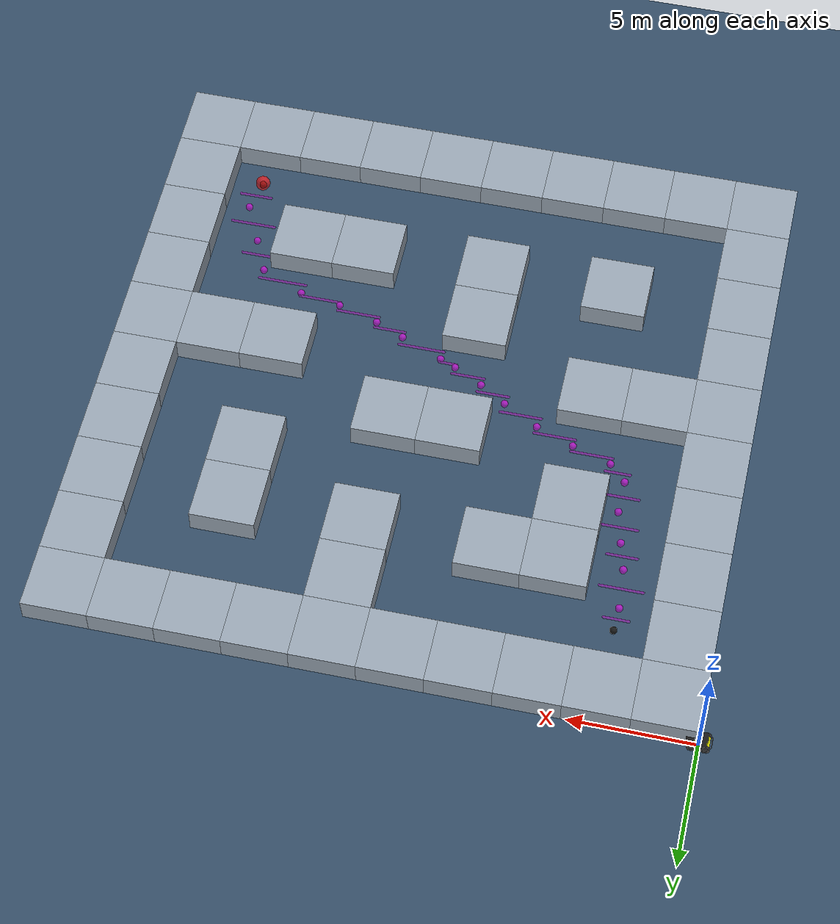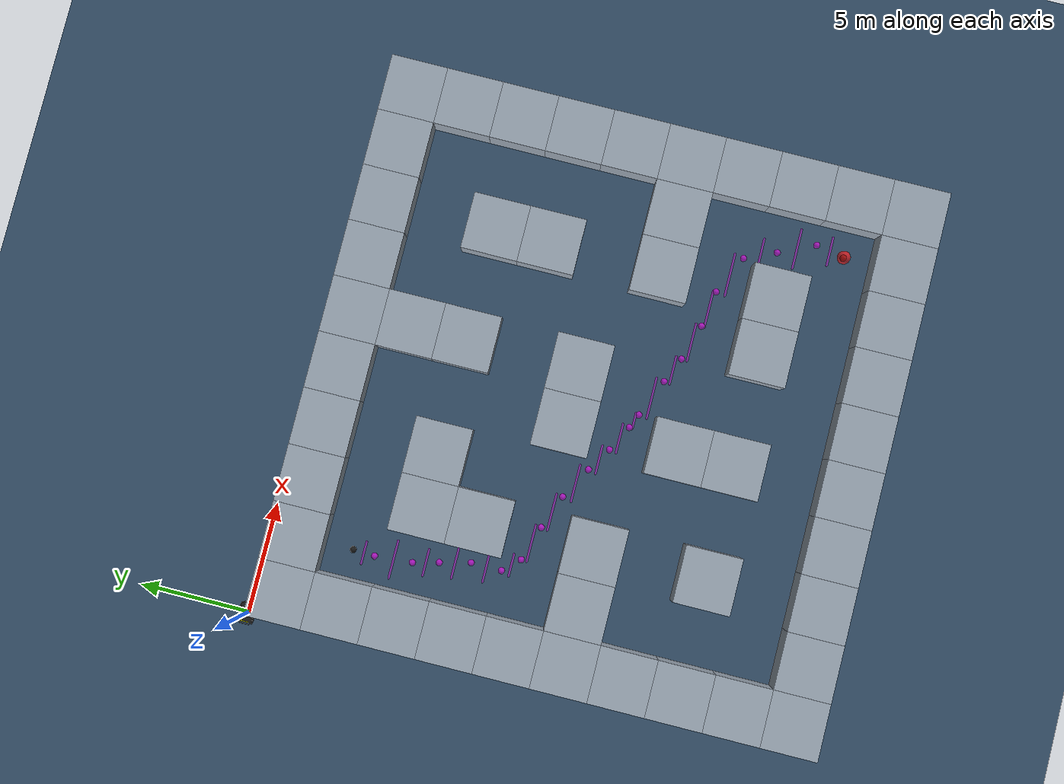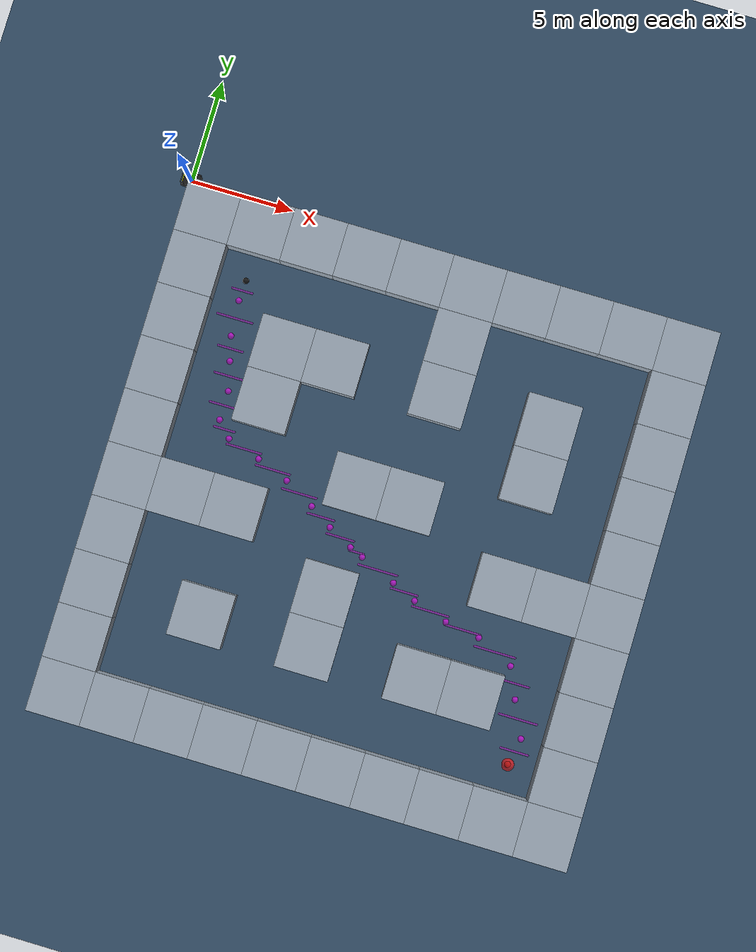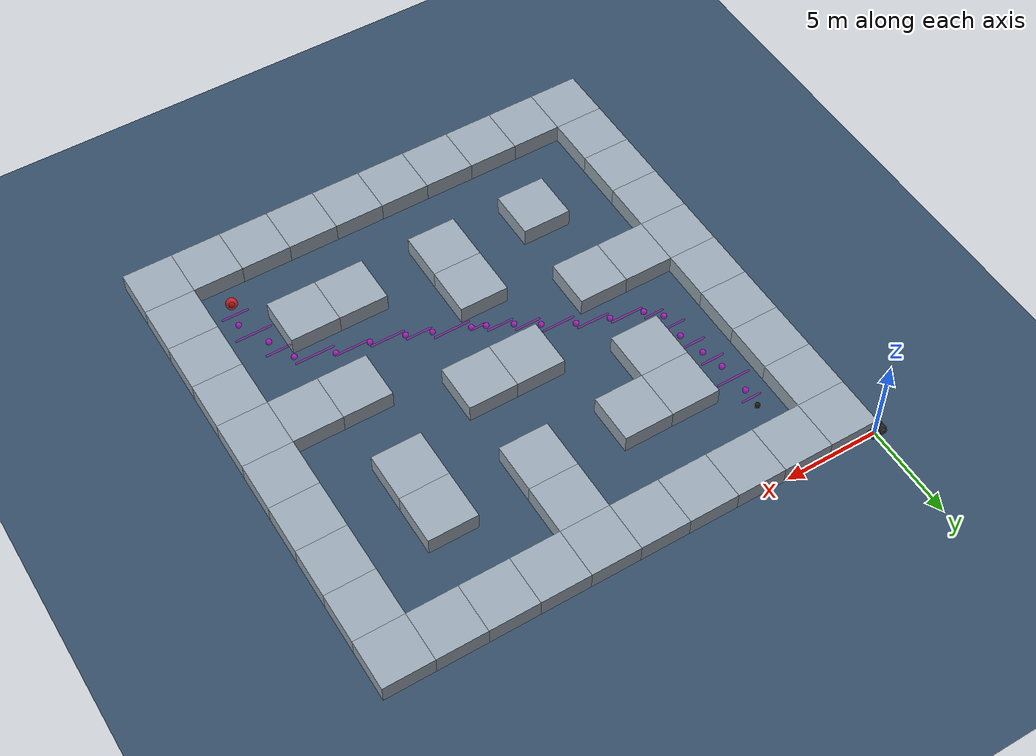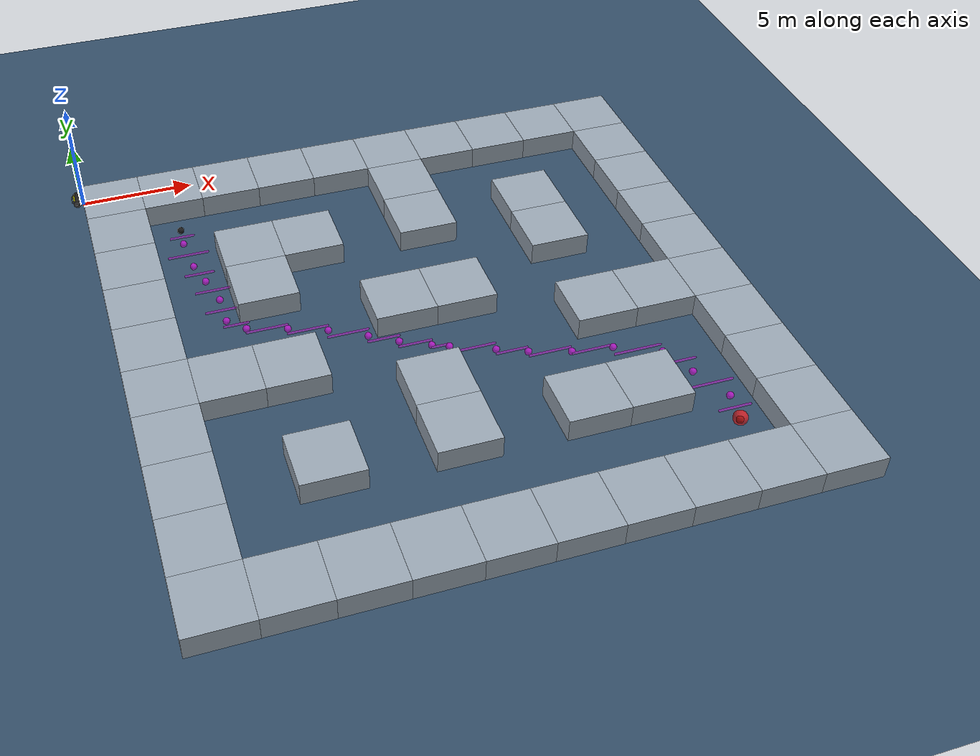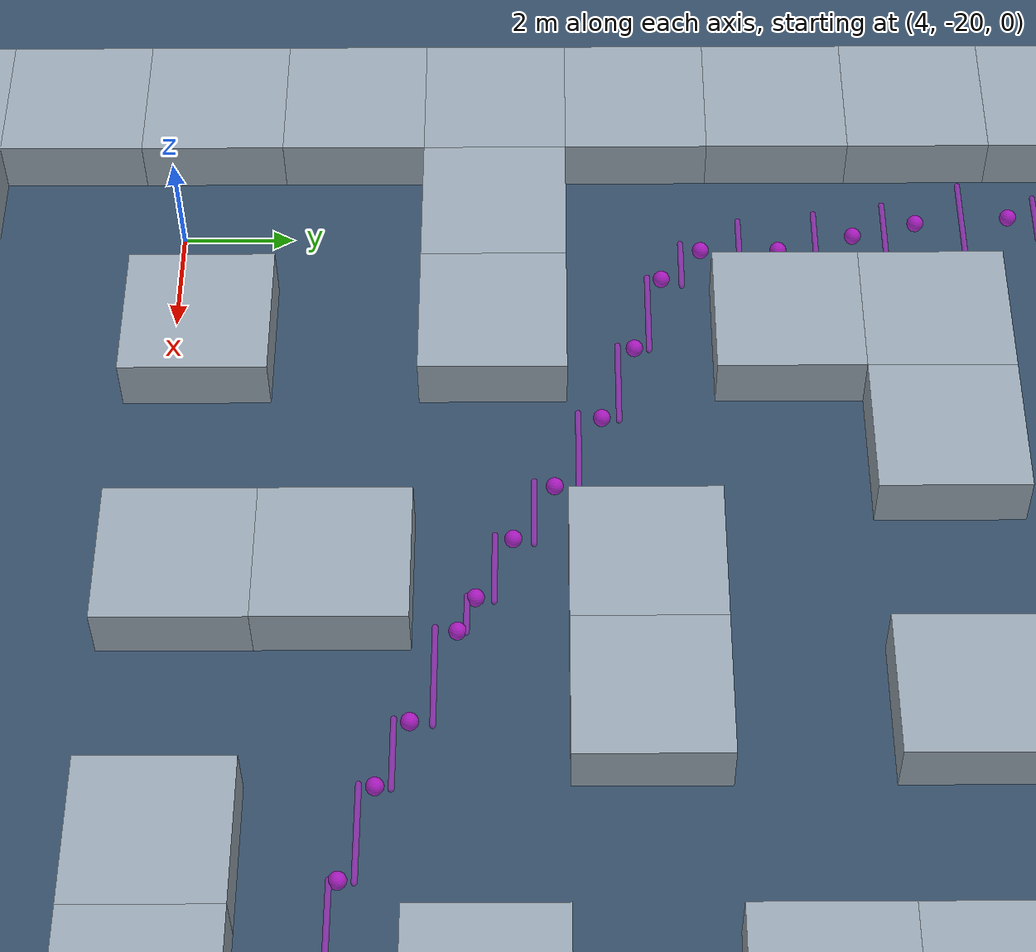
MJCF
<mujoco model="husky maze">
  <include file="./husky_w_lidar.xml"/>
  <include file="../object/floor_sky.xml"/>
  <worldbody>
    <geom name="wall_0" type="box" pos="1.300 -1.300 0.500" size="1.300 1.300 0.500" rgba="0.6 0.65 0.7 1" contype="1" conaffinity="1"/>
    <geom name="wall_1" type="box" pos="3.900 -1.300 0.500" size="1.300 1.300 0.500" rgba="0.6 0.65 0.7 1" contype="1" conaffinity="1"/>
    <geom name="wall_2" type="box" pos="6.500 -1.300 0.500" size="1.300 1.300 0.500" rgba="0.6 0.65 0.7 1" contype="1" conaffinity="1"/>
    <geom name="wall_3" type="box" pos="9.100 -1.300 0.500" size="1.300 1.300 0.500" rgba="0.6 0.65 0.7 1" contype="1" conaffinity="1"/>
    <geom name="wall_4" type="box" pos="11.700 -1.300 0.500" size="1.300 1.300 0.500" rgba="0.6 0.65 0.7 1" contype="1" conaffinity="1"/>
    <geom name="wall_5" type="box" pos="14.300 -1.300 0.500" size="1.300 1.300 0.500" rgba="0.6 0.65 0.7 1" contype="1" conaffinity="1"/>
    <geom name="wall_6" type="box" pos="16.900 -1.300 0.500" size="1.300 1.300 0.500" rgba="0.6 0.65 0.7 1" contype="1" conaffinity="1"/>
    <geom name="wall_7" type="box" pos="19.500 -1.300 0.500" size="1.300 1.300 0.500" rgba="0.6 0.65 0.7 1" contype="1" conaffinity="1"/>
    <geom name="wall_8" type="box" pos="22.100 -1.300 0.500" size="1.300 1.300 0.500" rgba="0.6 0.65 0.7 1" contype="1" conaffinity="1"/>
    <geom name="wall_9" type="box" pos="24.700 -1.300 0.500" size="1.300 1.300 0.500" rgba="0.6 0.65 0.7 1" contype="1" conaffinity="1"/>
    <geom name="wall_10" type="box" pos="1.300 -3.900 0.500" size="1.300 1.300 0.500" rgba="0.6 0.65 0.7 1" contype="1" conaffinity="1"/>
    <geom name="wall_11" type="box" pos="14.300 -3.900 0.500" size="1.300 1.300 0.500" rgba="0.6 0.65 0.7 1" contype="1" conaffinity="1"/>
    <geom name="wall_12" type="box" pos="24.700 -3.900 0.500" size="1.300 1.300 0.500" rgba="0.6 0.65 0.7 1" contype="1" conaffinity="1"/>
    <geom name="wall_13" type="box" pos="1.300 -6.500 0.500" size="1.300 1.300 0.500" rgba="0.6 0.65 0.7 1" contype="1" conaffinity="1"/>
    <geom name="wall_14" type="box" pos="6.500 -6.500 0.500" size="1.300 1.300 0.500" rgba="0.6 0.65 0.7 1" contype="1" conaffinity="1"/>
    <geom name="wall_15" type="box" pos="9.100 -6.500 0.500" size="1.300 1.300 0.500" rgba="0.6 0.65 0.7 1" contype="1" conaffinity="1"/>
    <geom name="wall_16" type="box" pos="14.300 -6.500 0.500" size="1.300 1.300 0.500" rgba="0.6 0.65 0.7 1" contype="1" conaffinity="1"/>
    <geom name="wall_17" type="box" pos="19.500 -6.500 0.500" size="1.300 1.300 0.500" rgba="0.6 0.65 0.7 1" contype="1" conaffinity="1"/>
    <geom name="wall_18" type="box" pos="24.700 -6.500 0.500" size="1.300 1.300 0.500" rgba="0.6 0.65 0.7 1" contype="1" conaffinity="1"/>
    <geom name="wall_19" type="box" pos="1.300 -9.100 0.500" size="1.300 1.300 0.500" rgba="0.6 0.65 0.7 1" contype="1" conaffinity="1"/>
    <geom name="wall_20" type="box" pos="6.500 -9.100 0.500" size="1.300 1.300 0.500" rgba="0.6 0.65 0.7 1" contype="1" conaffinity="1"/>
    <geom name="wall_21" type="box" pos="19.500 -9.100 0.500" size="1.300 1.300 0.500" rgba="0.6 0.65 0.7 1" contype="1" conaffinity="1"/>
    <geom name="wall_22" type="box" pos="24.700 -9.100 0.500" size="1.300 1.300 0.500" rgba="0.6 0.65 0.7 1" contype="1" conaffinity="1"/>
    <geom name="wall_23" type="box" pos="1.300 -11.700 0.500" size="1.300 1.300 0.500" rgba="0.6 0.65 0.7 1" contype="1" conaffinity="1"/>
    <geom name="wall_24" type="box" pos="11.700 -11.700 0.500" size="1.300 1.300 0.500" rgba="0.6 0.65 0.7 1" contype="1" conaffinity="1"/>
    <geom name="wall_25" type="box" pos="14.300 -11.700 0.500" size="1.300 1.300 0.500" rgba="0.6 0.65 0.7 1" contype="1" conaffinity="1"/>
    <geom name="wall_26" type="box" pos="24.700 -11.700 0.500" size="1.300 1.300 0.500" rgba="0.6 0.65 0.7 1" contype="1" conaffinity="1"/>
    <geom name="wall_27" type="box" pos="1.300 -14.300 0.500" size="1.300 1.300 0.500" rgba="0.6 0.65 0.7 1" contype="1" conaffinity="1"/>
    <geom name="wall_28" type="box" pos="3.900 -14.300 0.500" size="1.300 1.300 0.500" rgba="0.6 0.65 0.7 1" contype="1" conaffinity="1"/>
    <geom name="wall_29" type="box" pos="6.500 -14.300 0.500" size="1.300 1.300 0.500" rgba="0.6 0.65 0.7 1" contype="1" conaffinity="1"/>
    <geom name="wall_30" type="box" pos="19.500 -14.300 0.500" size="1.300 1.300 0.500" rgba="0.6 0.65 0.7 1" contype="1" conaffinity="1"/>
    <geom name="wall_31" type="box" pos="22.100 -14.300 0.500" size="1.300 1.300 0.500" rgba="0.6 0.65 0.7 1" contype="1" conaffinity="1"/>
    <geom name="wall_32" type="box" pos="24.700 -14.300 0.500" size="1.300 1.300 0.500" rgba="0.6 0.65 0.7 1" contype="1" conaffinity="1"/>
    <geom name="wall_33" type="box" pos="1.300 -16.900 0.500" size="1.300 1.300 0.500" rgba="0.6 0.65 0.7 1" contype="1" conaffinity="1"/>
    <geom name="wall_34" type="box" pos="11.700 -16.900 0.500" size="1.300 1.300 0.500" rgba="0.6 0.65 0.7 1" contype="1" conaffinity="1"/>
    <geom name="wall_35" type="box" pos="24.700 -16.900 0.500" size="1.300 1.300 0.500" rgba="0.6 0.65 0.7 1" contype="1" conaffinity="1"/>
    <geom name="wall_36" type="box" pos="1.300 -19.500 0.500" size="1.300 1.300 0.500" rgba="0.6 0.65 0.7 1" contype="1" conaffinity="1"/>
    <geom name="wall_37" type="box" pos="6.500 -19.500 0.500" size="1.300 1.300 0.500" rgba="0.6 0.65 0.7 1" contype="1" conaffinity="1"/>
    <geom name="wall_38" type="box" pos="11.700 -19.500 0.500" size="1.300 1.300 0.500" rgba="0.6 0.65 0.7 1" contype="1" conaffinity="1"/>
    <geom name="wall_39" type="box" pos="16.900 -19.500 0.500" size="1.300 1.300 0.500" rgba="0.6 0.65 0.7 1" contype="1" conaffinity="1"/>
    <geom name="wall_40" type="box" pos="19.500 -19.500 0.500" size="1.300 1.300 0.500" rgba="0.6 0.65 0.7 1" contype="1" conaffinity="1"/>
    <geom name="wall_41" type="box" pos="24.700 -19.500 0.500" size="1.300 1.300 0.500" rgba="0.6 0.65 0.7 1" contype="1" conaffinity="1"/>
    <geom name="wall_42" type="box" pos="1.300 -22.100 0.500" size="1.300 1.300 0.500" rgba="0.6 0.65 0.7 1" contype="1" conaffinity="1"/>
    <geom name="wall_43" type="box" pos="24.700 -22.100 0.500" size="1.300 1.300 0.500" rgba="0.6 0.65 0.7 1" contype="1" conaffinity="1"/>
    <geom name="wall_44" type="box" pos="1.300 -24.700 0.500" size="1.300 1.300 0.500" rgba="0.6 0.65 0.7 1" contype="1" conaffinity="1"/>
    <geom name="wall_45" type="box" pos="3.900 -24.700 0.500" size="1.300 1.300 0.500" rgba="0.6 0.65 0.7 1" contype="1" conaffinity="1"/>
    <geom name="wall_46" type="box" pos="6.500 -24.700 0.500" size="1.300 1.300 0.500" rgba="0.6 0.65 0.7 1" contype="1" conaffinity="1"/>
    <geom name="wall_47" type="box" pos="9.100 -24.700 0.500" size="1.300 1.300 0.500" rgba="0.6 0.65 0.7 1" contype="1" conaffinity="1"/>
    <geom name="wall_48" type="box" pos="11.700 -24.700 0.500" size="1.300 1.300 0.500" rgba="0.6 0.65 0.7 1" contype="1" conaffinity="1"/>
    <geom name="wall_49" type="box" pos="14.300 -24.700 0.500" size="1.300 1.300 0.500" rgba="0.6 0.65 0.7 1" contype="1" conaffinity="1"/>
    <geom name="wall_50" type="box" pos="16.900 -24.700 0.500" size="1.300 1.300 0.500" rgba="0.6 0.65 0.7 1" contype="1" conaffinity="1"/>
    <geom name="wall_51" type="box" pos="19.500 -24.700 0.500" size="1.300 1.300 0.500" rgba="0.6 0.65 0.7 1" contype="1" conaffinity="1"/>
    <geom name="wall_52" type="box" pos="22.100 -24.700 0.500" size="1.300 1.300 0.500" rgba="0.6 0.65 0.7 1" contype="1" conaffinity="1"/>
    <geom name="wall_53" type="box" pos="24.700 -24.700 0.500" size="1.300 1.300 0.500" rgba="0.6 0.65 0.7 1" contype="1" conaffinity="1"/>
    <geom name="goal_marker" type="sphere" pos="22.100 -22.100 0.5" size="0.3" rgba="1 0.1 0.1 0.7" contype="0" conaffinity="0"/>
    <geom name="wp_0" type="sphere" pos="3.900 -3.900 0.4" size="0.15" rgba="0.1 0.1 0.1 0.9" contype="0" conaffinity="0"/>
    <geom name="wp_1" type="sphere" pos="3.854 -4.899 0.4" size="0.15" rgba="1 0 1 0.6" contype="0" conaffinity="0"/>
    <geom name="wp_2" type="sphere" pos="3.987 -6.609 0.4" size="0.15" rgba="1 0 1 0.6" contype="0" conaffinity="0"/>
    <geom name="wp_3" type="sphere" pos="4.287 -7.773 0.4" size="0.15" rgba="1 0 1 0.6" contype="0" conaffinity="0"/>
    <geom name="wp_4" type="sphere" pos="4.627 -9.152 0.4" size="0.15" rgba="1 0 1 0.6" contype="0" conaffinity="0"/>
    <geom name="wp_5" type="sphere" pos="4.624 -10.558 0.4" size="0.15" rgba="1 0 1 0.6" contype="0" conaffinity="0"/>
    <geom name="wp_6" type="sphere" pos="5.309 -11.287 0.4" size="0.15" rgba="1 0 1 0.6" contype="0" conaffinity="0"/>
    <geom name="wp_7" type="sphere" pos="6.918 -11.806 0.4" size="0.15" rgba="1 0 1 0.6" contype="0" conaffinity="0"/>
    <geom name="wp_8" type="sphere" pos="8.479 -12.404 0.4" size="0.15" rgba="1 0 1 0.6" contype="0" conaffinity="0"/>
    <geom name="wp_9" type="sphere" pos="9.948 -13.226 0.4" size="0.15" rgba="1 0 1 0.6" contype="0" conaffinity="0"/>
    <geom name="wp_10" type="sphere" pos="11.047 -13.926 0.4" size="0.15" rgba="1 0 1 0.6" contype="0" conaffinity="0"/>
    <geom name="wp_11" type="sphere" pos="12.239 -14.544 0.4" size="0.15" rgba="1 0 1 0.6" contype="0" conaffinity="0"/>
    <geom name="wp_12" type="sphere" pos="12.897 -14.831 0.4" size="0.15" rgba="1 0 1 0.6" contype="0" conaffinity="0"/>
    <geom name="wp_13" type="sphere" pos="14.631 -15.569 0.4" size="0.15" rgba="1 0 1 0.6" contype="0" conaffinity="0"/>
    <geom name="wp_14" type="sphere" pos="15.822 -16.085 0.4" size="0.15" rgba="1 0 1 0.6" contype="0" conaffinity="0"/>
    <geom name="wp_15" type="sphere" pos="17.492 -16.603 0.4" size="0.15" rgba="1 0 1 0.6" contype="0" conaffinity="0"/>
    <geom name="wp_16" type="sphere" pos="19.177 -16.878 0.4" size="0.15" rgba="1 0 1 0.6" contype="0" conaffinity="0"/>
    <geom name="wp_17" type="sphere" pos="20.970 -17.717 0.4" size="0.15" rgba="1 0 1 0.6" contype="0" conaffinity="0"/>
    <geom name="wp_18" type="sphere" pos="21.600 -19.142 0.4" size="0.15" rgba="1 0 1 0.6" contype="0" conaffinity="0"/>
    <geom name="wp_19" type="sphere" pos="22.368 -20.803 0.4" size="0.15" rgba="1 0 1 0.6" contype="0" conaffinity="0"/>
    <geom name="wp_20" type="sphere" pos="22.100 -22.100 0.4" size="0.15" rgba="0.1 0.1 0.1 0.9" contype="0" conaffinity="0"/>
    <geom name="pathseg_0" type="capsule" pos="3.877 -4.399 0.4" size="0.05 0.500" euler="0 1.5708 -1.6167" rgba="1 0 1 0.4" contype="0" conaffinity="0"/>
    <geom name="pathseg_1" type="capsule" pos="3.920 -5.754 0.4" size="0.05 0.858" euler="0 1.5708 -1.4934" rgba="1 0 1 0.4" contype="0" conaffinity="0"/>
    <geom name="pathseg_2" type="capsule" pos="4.137 -7.191 0.4" size="0.05 0.601" euler="0 1.5708 -1.3186" rgba="1 0 1 0.4" contype="0" conaffinity="0"/>
    <geom name="pathseg_3" type="capsule" pos="4.457 -8.463 0.4" size="0.05 0.710" euler="0 1.5708 -1.3291" rgba="1 0 1 0.4" contype="0" conaffinity="0"/>
    <geom name="pathseg_4" type="capsule" pos="4.625 -9.855 0.4" size="0.05 0.703" euler="0 1.5708 -1.5728" rgba="1 0 1 0.4" contype="0" conaffinity="0"/>
    <geom name="pathseg_5" type="capsule" pos="4.966 -10.922 0.4" size="0.05 0.500" euler="0 1.5708 -0.8160" rgba="1 0 1 0.4" contype="0" conaffinity="0"/>
    <geom name="pathseg_6" type="capsule" pos="6.114 -11.546 0.4" size="0.05 0.845" euler="0 1.5708 -0.3119" rgba="1 0 1 0.4" contype="0" conaffinity="0"/>
    <geom name="pathseg_7" type="capsule" pos="7.698 -12.105 0.4" size="0.05 0.836" euler="0 1.5708 -0.3663" rgba="1 0 1 0.4" contype="0" conaffinity="0"/>
    <geom name="pathseg_8" type="capsule" pos="9.214 -12.815 0.4" size="0.05 0.842" euler="0 1.5708 -0.5097" rgba="1 0 1 0.4" contype="0" conaffinity="0"/>
    <geom name="pathseg_9" type="capsule" pos="10.498 -13.576 0.4" size="0.05 0.651" euler="0 1.5708 -0.5674" rgba="1 0 1 0.4" contype="0" conaffinity="0"/>
    <geom name="pathseg_10" type="capsule" pos="11.643 -14.235 0.4" size="0.05 0.672" euler="0 1.5708 -0.4781" rgba="1 0 1 0.4" contype="0" conaffinity="0"/>
    <geom name="pathseg_11" type="capsule" pos="12.568 -14.687 0.4" size="0.05 0.359" euler="0 1.5708 -0.4122" rgba="1 0 1 0.4" contype="0" conaffinity="0"/>
    <geom name="pathseg_12" type="capsule" pos="13.764 -15.200 0.4" size="0.05 0.942" euler="0 1.5708 -0.4024" rgba="1 0 1 0.4" contype="0" conaffinity="0"/>
    <geom name="pathseg_13" type="capsule" pos="15.226 -15.827 0.4" size="0.05 0.649" euler="0 1.5708 -0.4084" rgba="1 0 1 0.4" contype="0" conaffinity="0"/>
    <geom name="pathseg_14" type="capsule" pos="16.657 -16.344 0.4" size="0.05 0.874" euler="0 1.5708 -0.3010" rgba="1 0 1 0.4" contype="0" conaffinity="0"/>
    <geom name="pathseg_15" type="capsule" pos="18.335 -16.740 0.4" size="0.05 0.854" euler="0 1.5708 -0.1616" rgba="1 0 1 0.4" contype="0" conaffinity="0"/>
    <geom name="pathseg_16" type="capsule" pos="20.074 -17.298 0.4" size="0.05 0.990" euler="0 1.5708 -0.4381" rgba="1 0 1 0.4" contype="0" conaffinity="0"/>
    <geom name="pathseg_17" type="capsule" pos="21.285 -18.430 0.4" size="0.05 0.779" euler="0 1.5708 -1.1544" rgba="1 0 1 0.4" contype="0" conaffinity="0"/>
    <geom name="pathseg_18" type="capsule" pos="21.984 -19.972 0.4" size="0.05 0.915" euler="0 1.5708 -1.1378" rgba="1 0 1 0.4" contype="0" conaffinity="0"/>
    <geom name="pathseg_19" type="capsule" pos="22.234 -21.451 0.4" size="0.05 0.662" euler="0 1.5708 -1.7744" rgba="1 0 1 0.4" contype="0" conaffinity="0"/>
  </worldbody>
</mujoco>

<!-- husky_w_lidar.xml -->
<mujoco model="husky_robot_lidar">
  <compiler angle="radian" meshdir="./meshes/" autolimits="true"/>
  <default>
    <joint limited="false" armature="0.01" />
    <equality solref="0.0002 1" solimp="0.99 0.99 0.0001" />
  </default>
  <asset>
    <mesh name="base_link" file="base_link.stl"/>
    <mesh name="wheel" file="wheel.stl"/>
    <mesh name="top_plate" file="top_plate.stl"/>
    <mesh name="user_rail" file="user_rail.stl"/>
    <mesh name="bumper" file="bumper.stl"/>
    <mesh name="large_top_plate" file="large_top_plate.obj"/>
  </asset>
  <worldbody>
    <body name="base_husky" pos="0 0 0.1" euler="0 0 0">
      <inertial pos="0 0 0" quat="0.5 0.5 -0.5 0.5" mass="100" diaginertia="0.04411 0.02467 0.02467"/>
      <joint type="free" name="base_husky_joint" />
      <geom pos="0 0 0.14493" type="mesh" contype="0" conaffinity="1" group="1" density="0" rgba="0.1 0.1 0.1 1" mesh="base_link"/>
      <geom pos="0 0 0.14493" type="mesh" contype="0" conaffinity="1" group="1" density="0" rgba="0.8 0.8 0 1" mesh="top_plate"/>
      <geom pos="0.272 0 0.38993" type="mesh" contype="0" conaffinity="1" group="1" density="0" rgba="0.3 0.3 0.3 1" mesh="user_rail"/>
      <geom pos="0.48 0 0.23593" type="mesh" contype="0" conaffinity="1" group="1" density="0" rgba="0.3 0.3 0.3 1" mesh="bumper"/>
      <geom pos="-0.48 0 0.23593" quat="1.32679e-06 0 0 1" type="mesh" contype="0" conaffinity="1" group="1" density="0" rgba="0.3 0.3 0.3 1" mesh="bumper"/>
      <geom pos="0.08 0 0.38993" type="mesh" contype="0" conaffinity="1" group="1" density="0" rgba="0.1 0.1 0.1 1" mesh="large_top_plate"/>
      <!-- 2D LiDAR: 72 rangefinder rays at 5-degree intervals -->
      <site name="lidar_000" pos="0 0 0.55" zaxis="1.000000 0.000000 0" size="0.001" rgba="0 0 0 0" group="4"/>
      <site name="lidar_001" pos="0 0 0.55" zaxis="0.996195 0.087156 0" size="0.001" rgba="0 0 0 0" group="4"/>
      <site name="lidar_002" pos="0 0 0.55" zaxis="0.984808 0.173648 0" size="0.001" rgba="0 0 0 0" group="4"/>
      <site name="lidar_003" pos="0 0 0.55" zaxis="0.965926 0.258819 0" size="0.001" rgba="0 0 0 0" group="4"/>
      <site name="lidar_004" pos="0 0 0.55" zaxis="0.939693 0.342020 0" size="0.001" rgba="0 0 0 0" group="4"/>
      <site name="lidar_005" pos="0 0 0.55" zaxis="0.906308 0.422618 0" size="0.001" rgba="0 0 0 0" group="4"/>
      <site name="lidar_006" pos="0 0 0.55" zaxis="0.866025 0.500000 0" size="0.001" rgba="0 0 0 0" group="4"/>
      <site name="lidar_007" pos="0 0 0.55" zaxis="0.819152 0.573576 0" size="0.001" rgba="0 0 0 0" group="4"/>
      <site name="lidar_008" pos="0 0 0.55" zaxis="0.766044 0.642788 0" size="0.001" rgba="0 0 0 0" group="4"/>
      <site name="lidar_009" pos="0 0 0.55" zaxis="0.707107 0.707107 0" size="0.001" rgba="0 0 0 0" group="4"/>
      <site name="lidar_010" pos="0 0 0.55" zaxis="0.642788 0.766044 0" size="0.001" rgba="0 0 0 0" group="4"/>
      <site name="lidar_011" pos="0 0 0.55" zaxis="0.573576 0.819152 0" size="0.001" rgba="0 0 0 0" group="4"/>
      <site name="lidar_012" pos="0 0 0.55" zaxis="0.500000 0.866025 0" size="0.001" rgba="0 0 0 0" group="4"/>
      <site name="lidar_013" pos="0 0 0.55" zaxis="0.422618 0.906308 0" size="0.001" rgba="0 0 0 0" group="4"/>
      <site name="lidar_014" pos="0 0 0.55" zaxis="0.342020 0.939693 0" size="0.001" rgba="0 0 0 0" group="4"/>
      <site name="lidar_015" pos="0 0 0.55" zaxis="0.258819 0.965926 0" size="0.001" rgba="0 0 0 0" group="4"/>
      <site name="lidar_016" pos="0 0 0.55" zaxis="0.173648 0.984808 0" size="0.001" rgba="0 0 0 0" group="4"/>
      <site name="lidar_017" pos="0 0 0.55" zaxis="0.087156 0.996195 0" size="0.001" rgba="0 0 0 0" group="4"/>
      <site name="lidar_018" pos="0 0 0.55" zaxis="0.000000 1.000000 0" size="0.001" rgba="0 0 0 0" group="4"/>
      <site name="lidar_019" pos="0 0 0.55" zaxis="-0.087156 0.996195 0" size="0.001" rgba="0 0 0 0" group="4"/>
      <site name="lidar_020" pos="0 0 0.55" zaxis="-0.173648 0.984808 0" size="0.001" rgba="0 0 0 0" group="4"/>
      <site name="lidar_021" pos="0 0 0.55" zaxis="-0.258819 0.965926 0" size="0.001" rgba="0 0 0 0" group="4"/>
      <site name="lidar_022" pos="0 0 0.55" zaxis="-0.342020 0.939693 0" size="0.001" rgba="0 0 0 0" group="4"/>
      <site name="lidar_023" pos="0 0 0.55" zaxis="-0.422618 0.906308 0" size="0.001" rgba="0 0 0 0" group="4"/>
      <site name="lidar_024" pos="0 0 0.55" zaxis="-0.500000 0.866025 0" size="0.001" rgba="0 0 0 0" group="4"/>
      <site name="lidar_025" pos="0 0 0.55" zaxis="-0.573576 0.819152 0" size="0.001" rgba="0 0 0 0" group="4"/>
      <site name="lidar_026" pos="0 0 0.55" zaxis="-0.642788 0.766044 0" size="0.001" rgba="0 0 0 0" group="4"/>
      <site name="lidar_027" pos="0 0 0.55" zaxis="-0.707107 0.707107 0" size="0.001" rgba="0 0 0 0" group="4"/>
      <site name="lidar_028" pos="0 0 0.55" zaxis="-0.766044 0.642788 0" size="0.001" rgba="0 0 0 0" group="4"/>
      <site name="lidar_029" pos="0 0 0.55" zaxis="-0.819152 0.573576 0" size="0.001" rgba="0 0 0 0" group="4"/>
      <site name="lidar_030" pos="0 0 0.55" zaxis="-0.866025 0.500000 0" size="0.001" rgba="0 0 0 0" group="4"/>
      <site name="lidar_031" pos="0 0 0.55" zaxis="-0.906308 0.422618 0" size="0.001" rgba="0 0 0 0" group="4"/>
      <site name="lidar_032" pos="0 0 0.55" zaxis="-0.939693 0.342020 0" size="0.001" rgba="0 0 0 0" group="4"/>
      <site name="lidar_033" pos="0 0 0.55" zaxis="-0.965926 0.258819 0" size="0.001" rgba="0 0 0 0" group="4"/>
      <site name="lidar_034" pos="0 0 0.55" zaxis="-0.984808 0.173648 0" size="0.001" rgba="0 0 0 0" group="4"/>
      <site name="lidar_035" pos="0 0 0.55" zaxis="-0.996195 0.087156 0" size="0.001" rgba="0 0 0 0" group="4"/>
      <site name="lidar_036" pos="0 0 0.55" zaxis="-1.000000 0.000000 0" size="0.001" rgba="0 0 0 0" group="4"/>
      <site name="lidar_037" pos="0 0 0.55" zaxis="-0.996195 -0.087156 0" size="0.001" rgba="0 0 0 0" group="4"/>
      <site name="lidar_038" pos="0 0 0.55" zaxis="-0.984808 -0.173648 0" size="0.001" rgba="0 0 0 0" group="4"/>
      <site name="lidar_039" pos="0 0 0.55" zaxis="-0.965926 -0.258819 0" size="0.001" rgba="0 0 0 0" group="4"/>
      <site name="lidar_040" pos="0 0 0.55" zaxis="-0.939693 -0.342020 0" size="0.001" rgba="0 0 0 0" group="4"/>
      <site name="lidar_041" pos="0 0 0.55" zaxis="-0.906308 -0.422618 0" size="0.001" rgba="0 0 0 0" group="4"/>
      <site name="lidar_042" pos="0 0 0.55" zaxis="-0.866025 -0.500000 0" size="0.001" rgba="0 0 0 0" group="4"/>
      <site name="lidar_043" pos="0 0 0.55" zaxis="-0.819152 -0.573576 0" size="0.001" rgba="0 0 0 0" group="4"/>
      <site name="lidar_044" pos="0 0 0.55" zaxis="-0.766044 -0.642788 0" size="0.001" rgba="0 0 0 0" group="4"/>
      <site name="lidar_045" pos="0 0 0.55" zaxis="-0.707107 -0.707107 0" size="0.001" rgba="0 0 0 0" group="4"/>
      <site name="lidar_046" pos="0 0 0.55" zaxis="-0.642788 -0.766044 0" size="0.001" rgba="0 0 0 0" group="4"/>
      <site name="lidar_047" pos="0 0 0.55" zaxis="-0.573576 -0.819152 0" size="0.001" rgba="0 0 0 0" group="4"/>
      <site name="lidar_048" pos="0 0 0.55" zaxis="-0.500000 -0.866025 0" size="0.001" rgba="0 0 0 0" group="4"/>
      <site name="lidar_049" pos="0 0 0.55" zaxis="-0.422618 -0.906308 0" size="0.001" rgba="0 0 0 0" group="4"/>
      <site name="lidar_050" pos="0 0 0.55" zaxis="-0.342020 -0.939693 0" size="0.001" rgba="0 0 0 0" group="4"/>
      <site name="lidar_051" pos="0 0 0.55" zaxis="-0.258819 -0.965926 0" size="0.001" rgba="0 0 0 0" group="4"/>
      <site name="lidar_052" pos="0 0 0.55" zaxis="-0.173648 -0.984808 0" size="0.001" rgba="0 0 0 0" group="4"/>
      <site name="lidar_053" pos="0 0 0.55" zaxis="-0.087156 -0.996195 0" size="0.001" rgba="0 0 0 0" group="4"/>
      <site name="lidar_054" pos="0 0 0.55" zaxis="-0.000000 -1.000000 0" size="0.001" rgba="0 0 0 0" group="4"/>
      <site name="lidar_055" pos="0 0 0.55" zaxis="0.087156 -0.996195 0" size="0.001" rgba="0 0 0 0" group="4"/>
      <site name="lidar_056" pos="0 0 0.55" zaxis="0.173648 -0.984808 0" size="0.001" rgba="0 0 0 0" group="4"/>
      <site name="lidar_057" pos="0 0 0.55" zaxis="0.258819 -0.965926 0" size="0.001" rgba="0 0 0 0" group="4"/>
      <site name="lidar_058" pos="0 0 0.55" zaxis="0.342020 -0.939693 0" size="0.001" rgba="0 0 0 0" group="4"/>
      <site name="lidar_059" pos="0 0 0.55" zaxis="0.422618 -0.906308 0" size="0.001" rgba="0 0 0 0" group="4"/>
      <site name="lidar_060" pos="0 0 0.55" zaxis="0.500000 -0.866025 0" size="0.001" rgba="0 0 0 0" group="4"/>
      <site name="lidar_061" pos="0 0 0.55" zaxis="0.573576 -0.819152 0" size="0.001" rgba="0 0 0 0" group="4"/>
      <site name="lidar_062" pos="0 0 0.55" zaxis="0.642788 -0.766044 0" size="0.001" rgba="0 0 0 0" group="4"/>
      <site name="lidar_063" pos="0 0 0.55" zaxis="0.707107 -0.707107 0" size="0.001" rgba="0 0 0 0" group="4"/>
      <site name="lidar_064" pos="0 0 0.55" zaxis="0.766044 -0.642788 0" size="0.001" rgba="0 0 0 0" group="4"/>
      <site name="lidar_065" pos="0 0 0.55" zaxis="0.819152 -0.573576 0" size="0.001" rgba="0 0 0 0" group="4"/>
      <site name="lidar_066" pos="0 0 0.55" zaxis="0.866025 -0.500000 0" size="0.001" rgba="0 0 0 0" group="4"/>
      <site name="lidar_067" pos="0 0 0.55" zaxis="0.906308 -0.422618 0" size="0.001" rgba="0 0 0 0" group="4"/>
      <site name="lidar_068" pos="0 0 0.55" zaxis="0.939693 -0.342020 0" size="0.001" rgba="0 0 0 0" group="4"/>
      <site name="lidar_069" pos="0 0 0.55" zaxis="0.965926 -0.258819 0" size="0.001" rgba="0 0 0 0" group="4"/>
      <site name="lidar_070" pos="0 0 0.55" zaxis="0.984808 -0.173648 0" size="0.001" rgba="0 0 0 0" group="4"/>
      <site name="lidar_071" pos="0 0 0.55" zaxis="0.996195 -0.087156 0" size="0.001" rgba="0 0 0 0" group="4"/>

      <!-- Wheels -->
      <body name="front_left_wheel_link" pos="0.256 0.2854 0.17775" gravcomp="0" euler="0 0 3.14">
        <inertial pos="0 0 0" quat="0.5 0.5 -0.5 0.5" mass="2.637" diaginertia="0.04411 0.02467 0.02467"/>
        <joint name="front_left_wheel" pos="0 0 0" axis="0 1 0"/>
        <geom type="mesh" contype="0" conaffinity="1" group="1" density="0" rgba="0.3 0.3 0.3 1" mesh="wheel"/>
      </body>
      <body name="front_right_wheel_link" pos="0.256 -0.2854 0.17775" gravcomp="0" euler="0 0 3.14">
        <inertial pos="0 0 0" quat="0.5 0.5 -0.5 0.5" mass="2.637" diaginertia="0.04411 0.02467 0.02467"/>
        <joint name="front_right_wheel" pos="0 0 0" axis="0 1 0"/>
        <geom type="mesh" contype="0" conaffinity="1" group="1" density="0" rgba="0.3 0.3 0.3 1" mesh="wheel"/>
      </body>
      <body name="rear_left_wheel_link" pos="-0.256 0.2854 0.17775" gravcomp="0" euler="0 0 3.14">
        <inertial pos="0 0 0" quat="0.5 0.5 -0.5 0.5" mass="2.637" diaginertia="0.04411 0.02467 0.02467"/>
        <joint name="rear_left_wheel" pos="0 0 0" axis="0 1 0"/>
        <geom type="mesh" contype="0" conaffinity="1" group="1" density="0" rgba="0.3 0.3 0.3 1" mesh="wheel"/>
      </body>
      <body name="rear_right_wheel_link" pos="-0.256 -0.2854 0.17775" gravcomp="0" euler="0 0 3.14">
        <inertial pos="0 0 0" quat="0.5 0.5 -0.5 0.5" mass="2.637" diaginertia="0.04411 0.02467 0.02467"/>
        <joint name="rear_right_wheel" pos="0 0 0" axis="0 1 0"/>
        <geom type="mesh" contype="0" conaffinity="1" group="1" density="0" rgba="0.3 0.3 0.3 1" mesh="wheel"/>
      </body>
    </body>
  </worldbody>
  <actuator>
    <velocity name="front_left_actuator" ctrllimited="true" ctrlrange="-100.0 100.0" gear="-1"
      kv="10" joint="front_left_wheel" />
    <velocity name="front_right_actuator" ctrllimited="true" ctrlrange="-100.0 100.0" gear="-1"
      kv="10" joint="front_right_wheel" />
    <velocity name="rear_left_actuator" ctrllimited="true" ctrlrange="-100.0 100.0" gear="-1"
      kv="10" joint="rear_left_wheel" />
    <velocity name="rear_right_actuator" ctrllimited="true" ctrlrange="-100.0 100.0" gear="-1"
      kv="10" joint="rear_right_wheel" />
  </actuator>
  <sensor>
    <rangefinder name="lidar_000" site="lidar_000" cutoff="10"/>
    <rangefinder name="lidar_001" site="lidar_001" cutoff="10"/>
    <rangefinder name="lidar_002" site="lidar_002" cutoff="10"/>
    <rangefinder name="lidar_003" site="lidar_003" cutoff="10"/>
    <rangefinder name="lidar_004" site="lidar_004" cutoff="10"/>
    <rangefinder name="lidar_005" site="lidar_005" cutoff="10"/>
    <rangefinder name="lidar_006" site="lidar_006" cutoff="10"/>
    <rangefinder name="lidar_007" site="lidar_007" cutoff="10"/>
    <rangefinder name="lidar_008" site="lidar_008" cutoff="10"/>
    <rangefinder name="lidar_009" site="lidar_009" cutoff="10"/>
    <rangefinder name="lidar_010" site="lidar_010" cutoff="10"/>
    <rangefinder name="lidar_011" site="lidar_011" cutoff="10"/>
    <rangefinder name="lidar_012" site="lidar_012" cutoff="10"/>
    <rangefinder name="lidar_013" site="lidar_013" cutoff="10"/>
    <rangefinder name="lidar_014" site="lidar_014" cutoff="10"/>
    <rangefinder name="lidar_015" site="lidar_015" cutoff="10"/>
    <rangefinder name="lidar_016" site="lidar_016" cutoff="10"/>
    <rangefinder name="lidar_017" site="lidar_017" cutoff="10"/>
    <rangefinder name="lidar_018" site="lidar_018" cutoff="10"/>
    <rangefinder name="lidar_019" site="lidar_019" cutoff="10"/>
    <rangefinder name="lidar_020" site="lidar_020" cutoff="10"/>
    <rangefinder name="lidar_021" site="lidar_021" cutoff="10"/>
    <rangefinder name="lidar_022" site="lidar_022" cutoff="10"/>
    <rangefinder name="lidar_023" site="lidar_023" cutoff="10"/>
    <rangefinder name="lidar_024" site="lidar_024" cutoff="10"/>
    <rangefinder name="lidar_025" site="lidar_025" cutoff="10"/>
    <rangefinder name="lidar_026" site="lidar_026" cutoff="10"/>
    <rangefinder name="lidar_027" site="lidar_027" cutoff="10"/>
    <rangefinder name="lidar_028" site="lidar_028" cutoff="10"/>
    <rangefinder name="lidar_029" site="lidar_029" cutoff="10"/>
    <rangefinder name="lidar_030" site="lidar_030" cutoff="10"/>
    <rangefinder name="lidar_031" site="lidar_031" cutoff="10"/>
    <rangefinder name="lidar_032" site="lidar_032" cutoff="10"/>
    <rangefinder name="lidar_033" site="lidar_033" cutoff="10"/>
    <rangefinder name="lidar_034" site="lidar_034" cutoff="10"/>
    <rangefinder name="lidar_035" site="lidar_035" cutoff="10"/>
    <rangefinder name="lidar_036" site="lidar_036" cutoff="10"/>
    <rangefinder name="lidar_037" site="lidar_037" cutoff="10"/>
    <rangefinder name="lidar_038" site="lidar_038" cutoff="10"/>
    <rangefinder name="lidar_039" site="lidar_039" cutoff="10"/>
    <rangefinder name="lidar_040" site="lidar_040" cutoff="10"/>
    <rangefinder name="lidar_041" site="lidar_041" cutoff="10"/>
    <rangefinder name="lidar_042" site="lidar_042" cutoff="10"/>
    <rangefinder name="lidar_043" site="lidar_043" cutoff="10"/>
    <rangefinder name="lidar_044" site="lidar_044" cutoff="10"/>
    <rangefinder name="lidar_045" site="lidar_045" cutoff="10"/>
    <rangefinder name="lidar_046" site="lidar_046" cutoff="10"/>
    <rangefinder name="lidar_047" site="lidar_047" cutoff="10"/>
    <rangefinder name="lidar_048" site="lidar_048" cutoff="10"/>
    <rangefinder name="lidar_049" site="lidar_049" cutoff="10"/>
    <rangefinder name="lidar_050" site="lidar_050" cutoff="10"/>
    <rangefinder name="lidar_051" site="lidar_051" cutoff="10"/>
    <rangefinder name="lidar_052" site="lidar_052" cutoff="10"/>
    <rangefinder name="lidar_053" site="lidar_053" cutoff="10"/>
    <rangefinder name="lidar_054" site="lidar_054" cutoff="10"/>
    <rangefinder name="lidar_055" site="lidar_055" cutoff="10"/>
    <rangefinder name="lidar_056" site="lidar_056" cutoff="10"/>
    <rangefinder name="lidar_057" site="lidar_057" cutoff="10"/>
    <rangefinder name="lidar_058" site="lidar_058" cutoff="10"/>
    <rangefinder name="lidar_059" site="lidar_059" cutoff="10"/>
    <rangefinder name="lidar_060" site="lidar_060" cutoff="10"/>
    <rangefinder name="lidar_061" site="lidar_061" cutoff="10"/>
    <rangefinder name="lidar_062" site="lidar_062" cutoff="10"/>
    <rangefinder name="lidar_063" site="lidar_063" cutoff="10"/>
    <rangefinder name="lidar_064" site="lidar_064" cutoff="10"/>
    <rangefinder name="lidar_065" site="lidar_065" cutoff="10"/>
    <rangefinder name="lidar_066" site="lidar_066" cutoff="10"/>
    <rangefinder name="lidar_067" site="lidar_067" cutoff="10"/>
    <rangefinder name="lidar_068" site="lidar_068" cutoff="10"/>
    <rangefinder name="lidar_069" site="lidar_069" cutoff="10"/>
    <rangefinder name="lidar_070" site="lidar_070" cutoff="10"/>
    <rangefinder name="lidar_071" site="lidar_071" cutoff="10"/>
  </sensor>
</mujoco>

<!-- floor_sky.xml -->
<mujoco model="floor and sky">

    <!-- Haze -->
    <visual>
        <headlight diffuse="0.6 0.6 0.6" ambient="0.1 0.1 0.1" specular="0 0 0" />
        <rgba haze="0.15 0.25 0.35 1" />
        <global azimuth="120" elevation="-20" />
    </visual>

    <!-- Asset -->
    <asset>
        <!-- Sky -->
        <texture type="skybox" builtin="gradient" rgb1="0.1 0.2 0.3" rgb2="0 0 0" width="512"
            height="3072" />
        <!-- Ground -->
        <texture type="2d" name="groundplane" builtin="checker" mark="edge" rgb1="0.3 0.4 0.5"
            rgb2="0.1 0.2 0.3" markrgb="0.8 0.8 0.8" width="300" height="300" />
        <material name="groundplane" texture="groundplane" texuniform="true" texrepeat="2 2"
            reflectance="0.2" />
    </asset>

    <!-- Light and floor -->
    <worldbody>
        <light pos="0 0 3" dir="0 0 -1" directional="true" diffuse="1 1 1"/>
        <geom name="floor" size="0 0 0.05" type="plane" material="groundplane" />
    </worldbody>

</mujoco>
